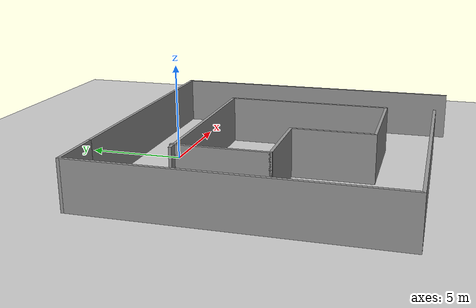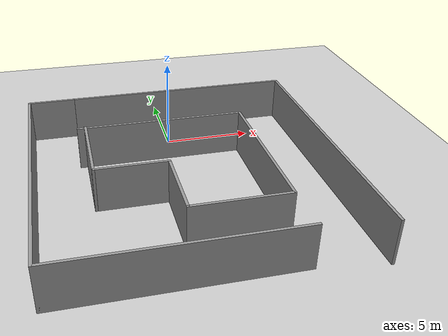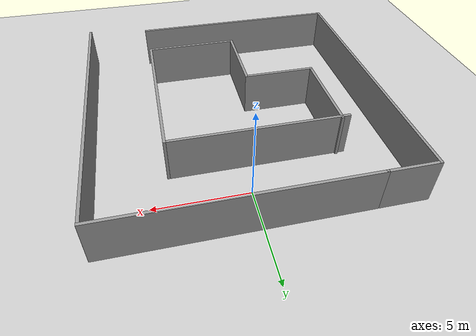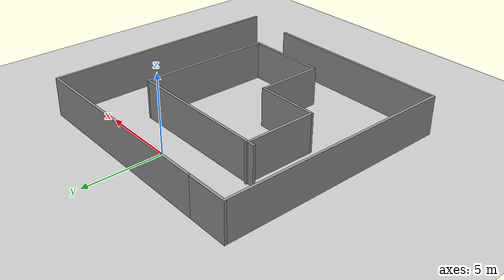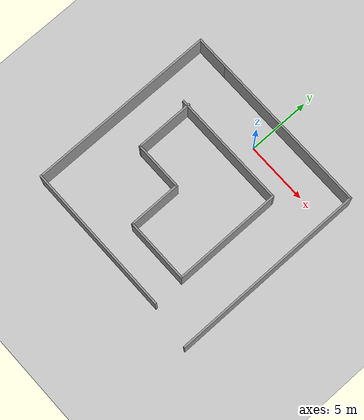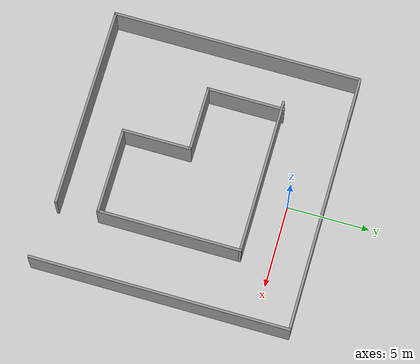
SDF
<sdf version="1.7">
 <world name="default">
  <light name="sun" type="directional">
   <pose>0 0 10 0 -0 0</pose>
   <diffuse>0.8 0.8 0.8 1</diffuse>
   <specular>0.2 0.2 0.2 1</specular>
   <attenuation>
    <range>1000</range>
    <constant>0.9</constant>
    <linear>0.01</linear>
    <quadratic>0.001</quadratic>
   </attenuation>
   <direction>-0.5 0.1 -0.9</direction>
   <spot><inner_angle>0</inner_angle><outer_angle>0</outer_angle><falloff>0</falloff></spot>
  </light>
  <model name="ground_plane">
   <static>1</static>
   <link name="link">
    <collision name="collision">
     <geometry><plane><normal>0 0 1</normal><size>100 100</size></plane></geometry>
     <surface>
      <contact><collide_bitmask>65535</collide_bitmask></contact>
      <friction><ode><mu>100</mu><mu2>50</mu2></ode></friction>
     </surface>
    </collision>
    <visual name="visual">
     <cast_shadows>0</cast_shadows>
     <geometry><plane><normal>0 0 1</normal><size>100 100</size></plane></geometry>
     <material>
      <script><uri>file://media/materials/scripts/gazebo.material</uri><name>Gazebo/Grey</name></script>
     </material>
    </visual>
   </link>
  </model>
  <gravity>0 0 -9.8</gravity>
  <magnetic_field>6e-06 2.3e-05 -4.2e-05</magnetic_field>
  <atmosphere type="adiabatic"/>
  <physics type="ode">
   <max_step_size>0.001</max_step_size>
   <real_time_factor>1</real_time_factor>
   <real_time_update_rate>1000</real_time_update_rate>
  </physics>
  <scene><ambient>0.4 0.4 0.4 1</ambient><background>0.7 0.7 0.7 1</background><shadows>1</shadows></scene>
  <spherical_coordinates>
   <surface_model>EARTH_WGS84</surface_model>
   <latitude_deg>0</latitude_deg>
   <longitude_deg>0</longitude_deg>
   <elevation>0</elevation>
   <heading_deg>0</heading_deg>
  </spherical_coordinates>
  <model name="escap.world">
   <pose>-0.242325 -5.67817 0 0 -0 0</pose>
   <link name="Wall_14">
    <collision name="Wall_14_Collision">
     <geometry><box><size>4.75 0.15 2.5</size></box></geometry>
     <pose>0 0 1.25 0 -0 0</pose>
    </collision>
    <visual name="Wall_14_Visual">
     <pose>0 0 1.25 0 -0 0</pose>
     <geometry><box><size>4.75 0.15 2.5</size></box></geometry>
     <material>
      <script><uri>file://media/materials/scripts/gazebo.material</uri><name>Gazebo/Grey</name></script>
      <ambient>1 1 1 1</ambient>
     </material>
     <meta><layer>0</layer></meta>
    </visual>
    <pose>-4.8193 1.62374 0 0 -0 -1.5708</pose>
   </link>
   <link name="Wall_15">
    <collision name="Wall_15_Collision">
     <geometry><box><size>4 0.15 2.5</size></box></geometry>
     <pose>0 0 1.25 0 -0 0</pose>
    </collision>
    <visual name="Wall_15_Visual">
     <pose>0 0 1.25 0 -0 0</pose>
     <geometry><box><size>4 0.15 2.5</size></box></geometry>
     <material>
      <script><uri>file://media/materials/scripts/gazebo.material</uri><name>Gazebo/Grey</name></script>
      <ambient>1 1 1 1</ambient>
     </material>
     <meta><layer>0</layer></meta>
    </visual>
    <pose>-2.89431 -0.676256 0 0 -0 0</pose>
   </link>
   <link name="Wall_16">
    <collision name="Wall_16_Collision">
     <geometry><box><size>4.25 0.15 2.5</size></box></geometry>
     <pose>0 0 1.25 0 -0 0</pose>
    </collision>
    <visual name="Wall_16_Visual">
     <pose>0 0 1.25 0 -0 0</pose>
     <geometry><box><size>4.25 0.15 2.5</size></box></geometry>
     <material>
      <script><uri>file://media/materials/scripts/gazebo.material</uri><name>Gazebo/Grey</name></script>
      <ambient>1 1 1 1</ambient>
     </material>
     <meta><layer>0</layer></meta>
    </visual>
    <pose>-0.969305 -2.72626 0 0 -0 -1.5708</pose>
   </link>
   <link name="Wall_17">
    <collision name="Wall_17_Collision">
     <geometry><box><size>5.25 0.15 2.5</size></box></geometry>
     <pose>0 0 1.25 0 -0 0</pose>
    </collision>
    <visual name="Wall_17_Visual">
     <pose>0 0 1.25 0 -0 0</pose>
     <geometry><box><size>5.25 0.15 2.5</size></box></geometry>
     <material>
      <script><uri>file://media/materials/scripts/gazebo.material</uri><name>Gazebo/Grey</name></script>
      <ambient>1 1 1 1</ambient>
     </material>
     <meta><layer>0</layer></meta>
    </visual>
    <pose>1.58069 -4.77626 0 0 -0 0</pose>
   </link>
   <link name="Wall_18">
    <collision name="Wall_18_Collision">
     <geometry><box><size>8.75 0.15 2.5</size></box></geometry>
     <pose>0 0 1.25 0 -0 0</pose>
    </collision>
    <visual name="Wall_18_Visual">
     <pose>0 0 1.25 0 -0 0</pose>
     <geometry><box><size>8.75 0.15 2.5</size></box></geometry>
     <material>
      <script><uri>file://media/materials/scripts/gazebo.material</uri><name>Gazebo/Grey</name></script>
      <ambient>1 1 1 1</ambient>
     </material>
     <meta><layer>0</layer></meta>
    </visual>
    <pose>4.1307 -0.476257 0 0 -0 1.5708</pose>
   </link>
   <link name="Wall_19">
    <collision name="Wall_19_Collision">
     <geometry><box><size>9.5 0.15 2.5</size></box></geometry>
     <pose>0 0 1.25 0 -0 0</pose>
    </collision>
    <visual name="Wall_19_Visual">
     <pose>0 0 1.25 0 -0 0</pose>
     <geometry><box><size>9.5 0.15 2.5</size></box></geometry>
     <material>
      <script><uri>file://media/materials/scripts/gazebo.material</uri><name>Gazebo/Grey</name></script>
      <ambient>1 1 1 1</ambient>
     </material>
     <meta><layer>0</layer></meta>
    </visual>
    <pose>-0.544305 3.82374 0 0 -0 3.14159</pose>
   </link>
   <link name="Wall_21">
    <collision name="Wall_21_Collision">
     <geometry><box><size>13.25 0.15 2.5</size></box></geometry>
     <pose>0 0 1.25 0 -0 0</pose>
    </collision>
    <visual name="Wall_21_Visual">
     <pose>0 0 1.25 0 -0 0</pose>
     <geometry><box><size>13.25 0.15 2.5</size></box></geometry>
     <material>
      <script><uri>file://media/materials/scripts/gazebo.material</uri><name>Gazebo/Grey</name></script>
      <ambient>1 1 1 1</ambient>
     </material>
     <meta><layer>0</layer></meta>
    </visual>
    <pose>1.3 7.8 0 0 -0 0</pose>
   </link>
   <link name="Wall_22">
    <collision name="Wall_22_Collision">
     <geometry><box><size>15.75 0.15 2.5</size></box></geometry>
     <pose>0 0 1.25 0 -0 0</pose>
    </collision>
    <visual name="Wall_22_Visual">
     <pose>0 0 1.25 0 -0 0</pose>
     <geometry><box><size>15.75 0.15 2.5</size></box></geometry>
     <material>
      <script><uri>file://media/materials/scripts/gazebo.material</uri><name>Gazebo/Grey</name></script>
      <ambient>1 1 1 1</ambient>
     </material>
     <meta><layer>0</layer></meta>
    </visual>
    <pose>7.85 -0 0 0 -0 -1.5708</pose>
   </link>
   <link name="Wall_24">
    <collision name="Wall_24_Collision">
     <geometry><box><size>2.75 0.15 2.5</size></box></geometry>
     <pose>0 0 1.25 0 -0 0</pose>
    </collision>
    <visual name="Wall_24_Visual">
     <pose>0 0 1.25 0 -0 0</pose>
     <geometry><box><size>2.75 0.15 2.5</size></box></geometry>
     <material>
      <script><uri>file://media/materials/scripts/gazebo.material</uri><name>Gazebo/Grey</name></script>
      <ambient>1 1 1 1</ambient>
     </material>
     <meta><layer>0</layer></meta>
    </visual>
    <pose>-6.55 7.8 0 0 -0 3.14159</pose>
   </link>
   <link name="Wall_25">
    <collision name="Wall_25_Collision">
     <geometry><box><size>15.25 0.15 2.5</size></box></geometry>
     <pose>0 0 1.25 0 -0 0</pose>
    </collision>
    <visual name="Wall_25_Visual">
     <pose>0 0 1.25 0 -0 0</pose>
     <geometry><box><size>15.25 0.15 2.5</size></box></geometry>
     <material>
      <script><uri>file://media/materials/scripts/gazebo.material</uri><name>Gazebo/Grey</name></script>
      <ambient>1 1 1 1</ambient>
     </material>
     <meta><layer>0</layer></meta>
    </visual>
    <pose>-7.85 0.25 0 0 -0 -1.5708</pose>
   </link>
   <link name="Wall_26">
    <collision name="Wall_26_Collision">
     <geometry><box><size>12.25 0.15 2.5</size></box></geometry>
     <pose>0 0 1.25 0 -0 0</pose>
    </collision>
    <visual name="Wall_26_Visual">
     <pose>0 0 1.25 0 -0 0</pose>
     <geometry><box><size>12.25 0.15 2.5</size></box></geometry>
     <material>
      <script><uri>file://media/materials/scripts/gazebo.material</uri><name>Gazebo/Grey</name></script>
      <ambient>1 1 1 1</ambient>
     </material>
     <meta><layer>0</layer></meta>
    </visual>
    <pose>-1.8 -7.3 0 0 -0 0</pose>
   </link>
   <static>1</static>
  </model>
 </world>
</sdf>
